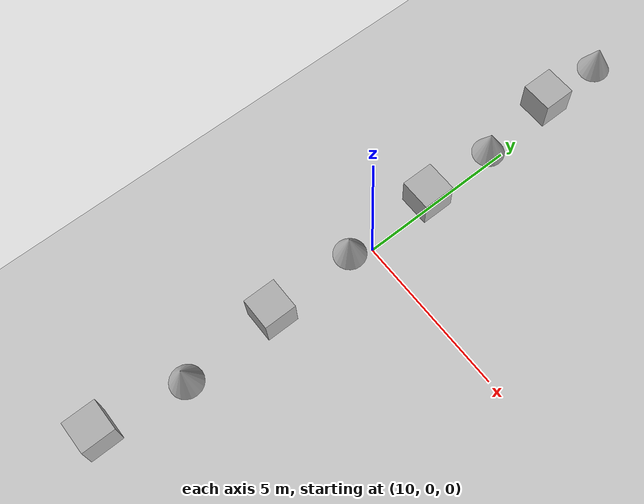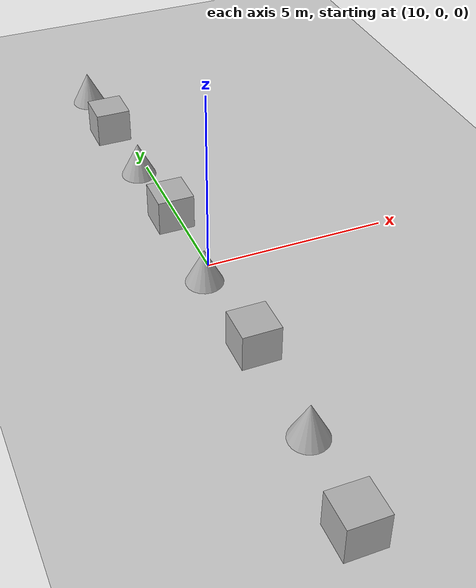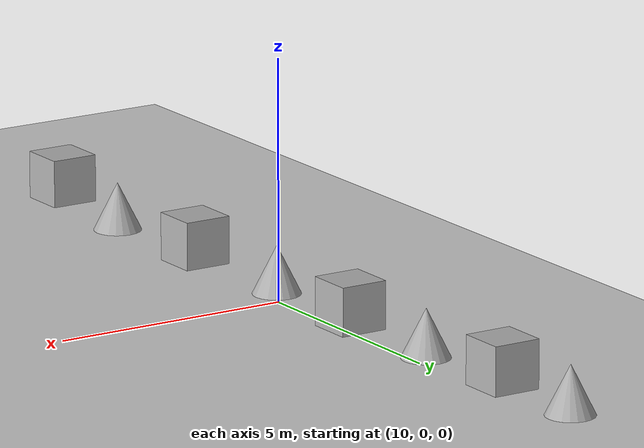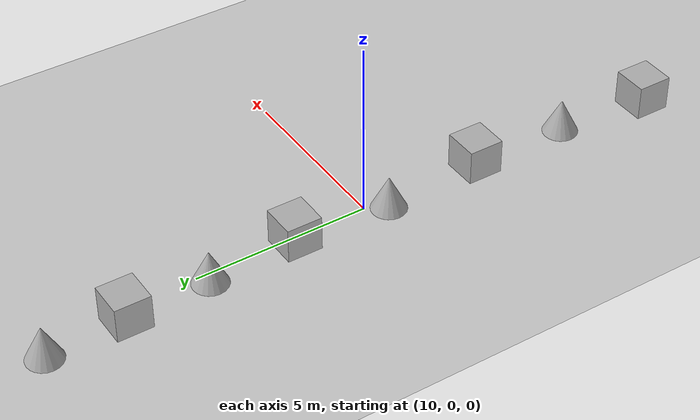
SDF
<sdf version='1.10'>
  <world name='empty'>
    <physics name='1ms' type='ignored'>
      <max_step_size>0.001</max_step_size>
      <real_time_factor>1</real_time_factor>
      <real_time_update_rate>1000</real_time_update_rate>
    </physics>
    <plugin name='gz::sim::systems::Physics' filename='gz-sim-physics-system'/>
    <plugin name='gz::sim::systems::UserCommands' filename='gz-sim-user-commands-system'/>
    <plugin name='gz::sim::systems::SceneBroadcaster' filename='gz-sim-scene-broadcaster-system'/>
    <plugin name='gz::sim::systems::Contact' filename='gz-sim-contact-system'/>
    <plugin name='gz::sim::systems::Sensors' filename='gz-sim-sensors-system'>
      <render_engine>ogre2</render_engine>
    </plugin>
    <gravity>0 0 -9.8000000000000007</gravity>
    <magnetic_field>5.5644999999999998e-06 2.2875799999999999e-05 -4.2388400000000002e-05</magnetic_field>
    <atmosphere type='adiabatic'/>
    <scene>
      <ambient>0.400000006 0.400000006 0.400000006 1</ambient>
      <background>0.699999988 0.699999988 0.699999988 1</background>
      <shadows>true</shadows>
    </scene>
    <model name='ground_plane'>
      <static>true</static>
      <link name='link'>
        <collision name='collision'>
          <geometry>
            <plane>
              <normal>0 0 1</normal>
              <size>100 100</size>
            </plane>
          </geometry>
          <surface>
            <friction>
              <ode/>
            </friction>
            <bounce/>
            <contact/>
          </surface>
        </collision>
        <visual name='visual'>
          <geometry>
            <plane>
              <normal>0 0 1</normal>
              <size>100 100</size>
            </plane>
          </geometry>
          <material>
            <ambient>0.800000012 0.800000012 0.800000012 1</ambient>
            <diffuse>0.800000012 0.800000012 0.800000012 1</diffuse>
            <specular>0.800000012 0.800000012 0.800000012 1</specular>
          </material>
        </visual>
        <pose>0 0 0 0 0 0</pose>
        <inertial>
          <pose>0 0 0 0 0 0</pose>
          <mass>1</mass>
          <inertia>
            <ixx>1</ixx>
            <ixy>0</ixy>
            <ixz>0</ixz>
            <iyy>1</iyy>
            <iyz>0</iyz>
            <izz>1</izz>
          </inertia>
        </inertial>
        <enable_wind>false</enable_wind>
      </link>
      <pose>0 0 0 0 0 0</pose>
      <self_collide>false</self_collide>
    </model>
    <model name='cone'>
      <pose>9.5050462340374722 9.350514367355963 0.49999999993296756 5.254112337112289e-17 -7.7132841035481852e-10 1.1756787404075212e-22</pose>
      <link name='cone_link'>
        <inertial>
          <inertia>
            <ixx>0.074999999999999997</ixx>
            <ixy>0</ixy>
            <ixz>0</ixz>
            <iyy>0.074999999999999997</iyy>
            <iyz>0</iyz>
            <izz>0.074999999999999997</izz>
          </inertia>
          <mass>1</mass>
          <pose>0 0 0 0 0 0</pose>
        </inertial>
        <collision name='cone_collision'>
          <geometry>
            <cone>
              <radius>0.5</radius>
              <length>1</length>
            </cone>
          </geometry>
          <surface>
            <friction>
              <ode/>
            </friction>
            <bounce/>
            <contact/>
          </surface>
        </collision>
        <visual name='cone_visual'>
          <geometry>
            <cone>
              <radius>0.5</radius>
              <length>1</length>
            </cone>
          </geometry>
          <material>
            <ambient>0.300000012 0.300000012 0.300000012 1</ambient>
            <diffuse>0.699999988 0.699999988 0.699999988 1</diffuse>
            <specular>1 1 1 1</specular>
          </material>
        </visual>
        <pose>0 0 0 0 0 0</pose>
        <enable_wind>false</enable_wind>
      </link>
      <static>false</static>
      <self_collide>false</self_collide>
    </model>
    <model name='box'>
      <pose>9.5483220109009128 7.157924089844756 0.49999999990199806 6.2287739151293738e-22 9.3279666454713669e-22 -3.6315533669320137e-22</pose>
      <link name='box_link'>
        <inertial>
          <inertia>
            <ixx>0.16666</ixx>
            <ixy>0</ixy>
            <ixz>0</ixz>
            <iyy>0.16666</iyy>
            <iyz>0</iyz>
            <izz>0.16666</izz>
          </inertia>
          <mass>1</mass>
          <pose>0 0 0 0 0 0</pose>
        </inertial>
        <collision name='box_collision'>
          <geometry>
            <box>
              <size>1 1 1</size>
            </box>
          </geometry>
          <surface>
            <friction>
              <ode/>
            </friction>
            <bounce/>
            <contact/>
          </surface>
        </collision>
        <visual name='box_visual'>
          <geometry>
            <box>
              <size>1 1 1</size>
            </box>
          </geometry>
          <material>
            <ambient>0.300000012 0.300000012 0.300000012 1</ambient>
            <diffuse>0.699999988 0.699999988 0.699999988 1</diffuse>
            <specular>1 1 1 1</specular>
          </material>
        </visual>
        <pose>0 0 0 0 0 0</pose>
        <enable_wind>false</enable_wind>
      </link>
      <static>false</static>
      <self_collide>false</self_collide>
    </model>
    <model name='cone_0'>
      <pose>9.6815675927095466 4.7552383294976543 0.49999999993296756 5.2544931075677214e-17 -7.7132841038480847e-10 -7.6328321314384305e-23</pose>
      <link name='cone_link'>
        <inertial>
          <inertia>
            <ixx>0.074999999999999997</ixx>
            <ixy>0</ixy>
            <ixz>0</ixz>
            <iyy>0.074999999999999997</iyy>
            <iyz>0</iyz>
            <izz>0.074999999999999997</izz>
          </inertia>
          <mass>1</mass>
          <pose>0 0 0 0 0 0</pose>
        </inertial>
        <collision name='cone_collision'>
          <geometry>
            <cone>
              <radius>0.5</radius>
              <length>1</length>
            </cone>
          </geometry>
          <surface>
            <friction>
              <ode/>
            </friction>
            <bounce/>
            <contact/>
          </surface>
        </collision>
        <visual name='cone_visual'>
          <geometry>
            <cone>
              <radius>0.5</radius>
              <length>1</length>
            </cone>
          </geometry>
          <material>
            <ambient>0.300000012 0.300000012 0.300000012 1</ambient>
            <diffuse>0.699999988 0.699999988 0.699999988 1</diffuse>
            <specular>1 1 1 1</specular>
          </material>
        </visual>
        <pose>0 0 0 0 0 0</pose>
        <enable_wind>false</enable_wind>
      </link>
      <static>false</static>
      <self_collide>false</self_collide>
    </model>
    <model name='box_0'>
      <pose>9.7733188523012835 2.2318746269675822 0.49999999990199806 6.2287739151293738e-22 9.3279666454713669e-22 -3.6315533669320137e-22</pose>
      <link name='box_link'>
        <inertial>
          <inertia>
            <ixx>0.16666</ixx>
            <ixy>0</ixy>
            <ixz>0</ixz>
            <iyy>0.16666</iyy>
            <iyz>0</iyz>
            <izz>0.16666</izz>
          </inertia>
          <mass>1</mass>
          <pose>0 0 0 0 0 0</pose>
        </inertial>
        <collision name='box_collision'>
          <geometry>
            <box>
              <size>1 1 1</size>
            </box>
          </geometry>
          <surface>
            <friction>
              <ode/>
            </friction>
            <bounce/>
            <contact/>
          </surface>
        </collision>
        <visual name='box_visual'>
          <geometry>
            <box>
              <size>1 1 1</size>
            </box>
          </geometry>
          <material>
            <ambient>0.300000012 0.300000012 0.300000012 1</ambient>
            <diffuse>0.699999988 0.699999988 0.699999988 1</diffuse>
            <specular>1 1 1 1</specular>
          </material>
        </visual>
        <pose>0 0 0 0 0 0</pose>
        <enable_wind>false</enable_wind>
      </link>
      <static>false</static>
      <self_collide>false</self_collide>
    </model>
    <model name='cone_1'>
      <pose>9.6815677908266728 -0.56934656589789812 0.49999999993296756 5.2547526918197234e-17 -7.7132841037235857e-10 1.2067219525625179e-22</pose>
      <link name='cone_link'>
        <inertial>
          <inertia>
            <ixx>0.074999999999999997</ixx>
            <ixy>0</ixy>
            <ixz>0</ixz>
            <iyy>0.074999999999999997</iyy>
            <iyz>0</iyz>
            <izz>0.074999999999999997</izz>
          </inertia>
          <mass>1</mass>
          <pose>0 0 0 0 0 0</pose>
        </inertial>
        <collision name='cone_collision'>
          <geometry>
            <cone>
              <radius>0.5</radius>
              <length>1</length>
            </cone>
          </geometry>
          <surface>
            <friction>
              <ode/>
            </friction>
            <bounce/>
            <contact/>
          </surface>
        </collision>
        <visual name='cone_visual'>
          <geometry>
            <cone>
              <radius>0.5</radius>
              <length>1</length>
            </cone>
          </geometry>
          <material>
            <ambient>0.300000012 0.300000012 0.300000012 1</ambient>
            <diffuse>0.699999988 0.699999988 0.699999988 1</diffuse>
            <specular>1 1 1 1</specular>
          </material>
        </visual>
        <pose>0 0 0 0 0 0</pose>
        <enable_wind>false</enable_wind>
      </link>
      <static>false</static>
      <self_collide>false</self_collide>
    </model>
    <model name='box_1'>
      <pose>9.8191253562411127 -3.416413524753402 0.49999999990199806 6.2287739151293738e-22 9.3279666454713669e-22 -3.6315533669320137e-22</pose>
      <link name='box_link'>
        <inertial>
          <inertia>
            <ixx>0.16666</ixx>
            <ixy>0</ixy>
            <ixz>0</ixz>
            <iyy>0.16666</iyy>
            <iyz>0</iyz>
            <izz>0.16666</izz>
          </inertia>
          <mass>1</mass>
          <pose>0 0 0 0 0 0</pose>
        </inertial>
        <collision name='box_collision'>
          <geometry>
            <box>
              <size>1 1 1</size>
            </box>
          </geometry>
          <surface>
            <friction>
              <ode/>
            </friction>
            <bounce/>
            <contact/>
          </surface>
        </collision>
        <visual name='box_visual'>
          <geometry>
            <box>
              <size>1 1 1</size>
            </box>
          </geometry>
          <material>
            <ambient>0.300000012 0.300000012 0.300000012 1</ambient>
            <diffuse>0.699999988 0.699999988 0.699999988 1</diffuse>
            <specular>1 1 1 1</specular>
          </material>
        </visual>
        <pose>0 0 0 0 0 0</pose>
        <enable_wind>false</enable_wind>
      </link>
      <static>false</static>
      <self_collide>false</self_collide>
    </model>
    <model name='cone_2'>
      <pose>9.8635504508182361 -6.3391969912859985 0.49999999993296756 5.2548544155140844e-17 -7.7132841038066057e-10 -1.848369177196814e-23</pose>
      <link name='cone_link'>
        <inertial>
          <inertia>
            <ixx>0.074999999999999997</ixx>
            <ixy>0</ixy>
            <ixz>0</ixz>
            <iyy>0.074999999999999997</iyy>
            <iyz>0</iyz>
            <izz>0.074999999999999997</izz>
          </inertia>
          <mass>1</mass>
          <pose>0 0 0 0 0 0</pose>
        </inertial>
        <collision name='cone_collision'>
          <geometry>
            <cone>
              <radius>0.5</radius>
              <length>1</length>
            </cone>
          </geometry>
          <surface>
            <friction>
              <ode/>
            </friction>
            <bounce/>
            <contact/>
          </surface>
        </collision>
        <visual name='cone_visual'>
          <geometry>
            <cone>
              <radius>0.5</radius>
              <length>1</length>
            </cone>
          </geometry>
          <material>
            <ambient>0.300000012 0.300000012 0.300000012 1</ambient>
            <diffuse>0.699999988 0.699999988 0.699999988 1</diffuse>
            <specular>1 1 1 1</specular>
          </material>
        </visual>
        <pose>0 0 0 0 0 0</pose>
        <enable_wind>false</enable_wind>
      </link>
      <static>false</static>
      <self_collide>false</self_collide>
    </model>
    <model name='box_2'>
      <pose>9.5930530579375066 -8.9785795260198942 0.49999999990199806 6.2287739151293738e-22 9.3279666454713669e-22 -3.6315533669320137e-22</pose>
      <link name='box_link'>
        <inertial>
          <inertia>
            <ixx>0.16666</ixx>
            <ixy>0</ixy>
            <ixz>0</ixz>
            <iyy>0.16666</iyy>
            <iyz>0</iyz>
            <izz>0.16666</izz>
          </inertia>
          <mass>1</mass>
          <pose>0 0 0 0 0 0</pose>
        </inertial>
        <collision name='box_collision'>
          <geometry>
            <box>
              <size>1 1 1</size>
            </box>
          </geometry>
          <surface>
            <friction>
              <ode/>
            </friction>
            <bounce/>
            <contact/>
          </surface>
        </collision>
        <visual name='box_visual'>
          <geometry>
            <box>
              <size>1 1 1</size>
            </box>
          </geometry>
          <material>
            <ambient>0.300000012 0.300000012 0.300000012 1</ambient>
            <diffuse>0.699999988 0.699999988 0.699999988 1</diffuse>
            <specular>1 1 1 1</specular>
          </material>
        </visual>
        <pose>0 0 0 0 0 0</pose>
        <enable_wind>false</enable_wind>
      </link>
      <static>false</static>
      <self_collide>false</self_collide>
    </model>
    <light name='sun' type='directional'>
      <pose>0 0 10 0 0 0</pose>
      <cast_shadows>true</cast_shadows>
      <intensity>1</intensity>
      <direction>-0.5 0.10000000000000001 -0.90000000000000002</direction>
      <diffuse>0.800000012 0.800000012 0.800000012 1</diffuse>
      <specular>0.200000003 0.200000003 0.200000003 1</specular>
      <attenuation>
        <range>1000</range>
        <linear>0.0099999997764825821</linear>
        <constant>0.89999997615814209</constant>
        <quadratic>0.0010000000474974513</quadratic>
      </attenuation>
      <spot>
        <inner_angle>0</inner_angle>
        <outer_angle>0</outer_angle>
        <falloff>0</falloff>
      </spot>
    </light>
  </world>
</sdf>
